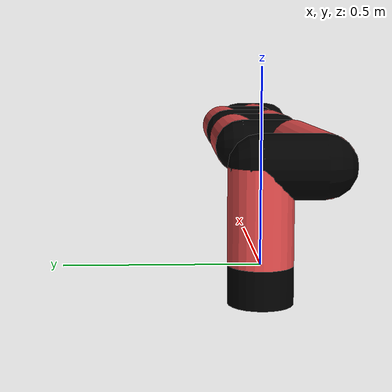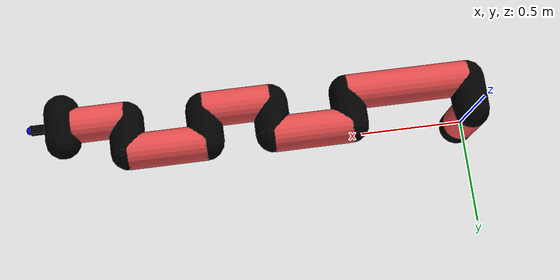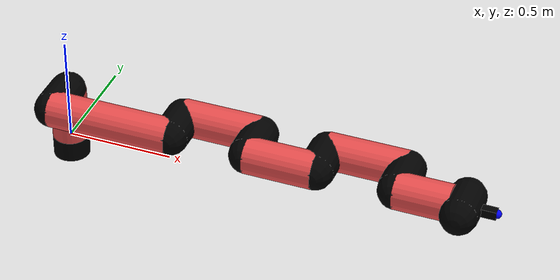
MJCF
<mujoco model="manipulator">
		<compiler angle="degree" coordinate="local" inertiafromgeom="auto" meshdir="meshes/"/>
		<option gravity="0 0 0" integrator="RK4" iterations="30" timestep="0.01"/>

		<default>
		<joint armature="1" limited="true" stiffness="10" damping="15" frictionloss="5.0"/>
		<geom conaffinity="1" condim="3" contype="1" friction=".5 .1 .1" margin="0.002"/>
		<motor ctrllimited="true"/>
		<position ctrllimited="true"/>
		</default>

		<asset>
		<texture builtin="gradient" height="100" rgb1="1.0 1.0 1.0" rgb2="1.0 1.0 1.0" type="skybox" width="100"/>
		<texture builtin="flat" height="32" name="arm_tex" rgb1="0.9 0.3 0.3" type="2d" width="32"/>
		<texture builtin="flat" height="32" name="gripper_tex" rgb1="0.0 0.0 0.0" type="cube" width="32"/>

		<material name="arm_mat" shininess="0.1" specular="0.1" texture="arm_tex"/>
		<material name="gripper_mat" shininess="1" specular="1" texture="gripper_tex"/>
		</asset>

		<worldbody>
		<light cutoff="45" diffuse=".8 .8 .8" dir="0 0.16 -1" directional="false" name="light" pos="0 -2.0 8.0" specular="0.3 0.3 0.3"/>

		<body name="base_link" pos="0 0 -0.1">
		<geom fromto="0 0 0 0 0 0.1" material="arm_mat" name="base_link" rgba="0.0 0.0 0.0 1" size="0.085" type="cylinder"/>
		</body>

		<body name="l1" pos="0 0 0">
<geom fromto="0 0 0 0 0 0.25" material="arm_mat" name="l1" rgba="0.9 0.3 0.3 1" size="0.085" type="cylinder"/>
<geom fromto="0 0 0.25 0 -0.16 0.25" material="arm_mat" name="l1_ex" rgba="0.0 0.0 0.0 1" size="0.085" type="capsule"/>
<joint axis="0 0 1" name="j1" pos="0 0 0" range="-90 90" damping="33.45" frictionloss="7.7"/>

<body name="l2" pos="0 -0.16 0.25">
<geom fromto="0 0 0 0.58 0 0" material="arm_mat" name="l2" rgba="0.9 0.3 0.3 1" size="0.085" type="cylinder"/>
<geom fromto="0.58 0 0 0.58 0.16 0" material="arm_mat" name="l2_ex" rgba="0.0 0.0 0.0 1" size="0.085" type="capsule"/>
<joint axis="0.06 1.02 0.08" name="j2" pos="0 0 0" range="-90 60" damping="31.93" frictionloss="8.84"/>

<body name="l3" pos="0.58 0.16 0">
<geom fromto="0 0 0 0.37 0 0" material="arm_mat" name="l3" rgba="0.9 0.3 0.3 1" size="0.085" type="cylinder"/>
<geom fromto="0.37 0 0 0.37 -0.16 0" material="arm_mat" name="l3_ex" rgba="0.0 0.0 0.0 1" size="0.085" type="capsule"/>
<joint axis="-0.18 1.13 -0.14" name="j3" pos="0 0 0" range="-30 60" damping="24.59" frictionloss="11.38"/>

<body name="l4" pos="0.37 -0.16 0">
<geom fromto="0 0 0 0.32 0 0" material="arm_mat" name="l4" rgba="0.9 0.3 0.3 1" size="0.085" type="cylinder"/>
<geom fromto="0.32 0 0 0.32 0.16 0" material="arm_mat" name="l4_ex" rgba="0.0 0.0 0.0 1" size="0.085" type="capsule"/>
<joint axis="0.01 1.14 -0.24" name="j4" pos="0 0 0" range="-30 60" damping="33.01" frictionloss="9.73"/>

<body name="l5" pos="0.32 0.16 0">
<geom fromto="0 0 0 0.37 0 0" material="arm_mat" name="l5" rgba="0.9 0.3 0.3 1" size="0.085" type="cylinder"/>
<geom fromto="0.37 0 0 0.37 -0.16 0" material="arm_mat" name="l5_ex" rgba="0.0 0.0 0.0 1" size="0.085" type="capsule"/>
<joint axis="-0.09 1.19 0.17" name="j5" pos="0 0 0" range="-30 60" damping="28.24" frictionloss="11.51"/>

<body name="l6" pos="0.37 -0.16 0">
<geom fromto="0 0 0 0.25 0 0" material="arm_mat" name="l6" rgba="0.9 0.3 0.3 1" size="0.085" type="cylinder"/>
<joint axis="0.02 1.18 0.22" name="j6" pos="0 0 0" range="-30 60" damping="27.38" frictionloss="8.13"/>

<body name="gripper" pos="0.25 0 0">
<geom fromto="0.05 -0.07 0 0.05 0.07 0" material="gripper_mat" name="gripper" rgba="0.0 0.0 0.0 1" size="0.085" type="capsule"/><joint axis="1 0 0" name="j7" pos="0 0 0" range="-90 90" damping="15" frictionloss="5.0"/><body name="finger" pos="0.1 0 0">
<geom fromto="0 0.0 0 0.1 0.0 0" material="gripper_mat" name="finger" rgba="0.0 0.0 0.0 1" size="0.020 0.06 0.06" type="box"/>
</body>
<site name="current" pos="0.2 0. 0.0" rgba="0. 0. 1.0 1" size="0.02" type="sphere"/>
</body>
</body>
</body>
</body>
</body>
</body>
</body>
</worldbody>
<actuator>
<motor ctrllimited="true" ctrlrange="-1.0 1.0" joint="j1" gear="99.25"/>
<motor ctrllimited="true" ctrlrange="-1.0 1.0" joint="j2" gear="96.51"/>
<motor ctrllimited="true" ctrlrange="-1.0 1.0" joint="j3" gear="93.68"/>
<motor ctrllimited="true" ctrlrange="-1.0 1.0" joint="j4" gear="96.97"/>
<motor ctrllimited="true" ctrlrange="-1.0 1.0" joint="j5" gear="77.32"/>
<motor ctrllimited="true" ctrlrange="-1.0 1.0" joint="j6" gear="96.36"/>
<motor ctrllimited="true" ctrlrange="-1.0 1.0" joint="j7" gear="80"/>
</actuator>
</mujoco>
